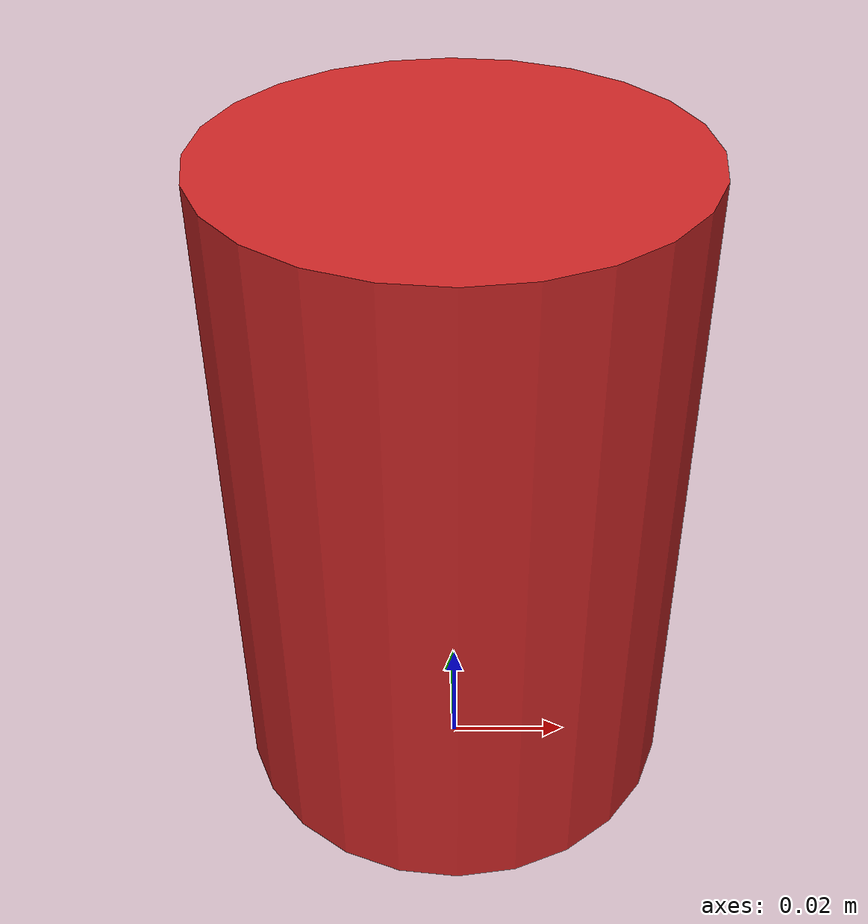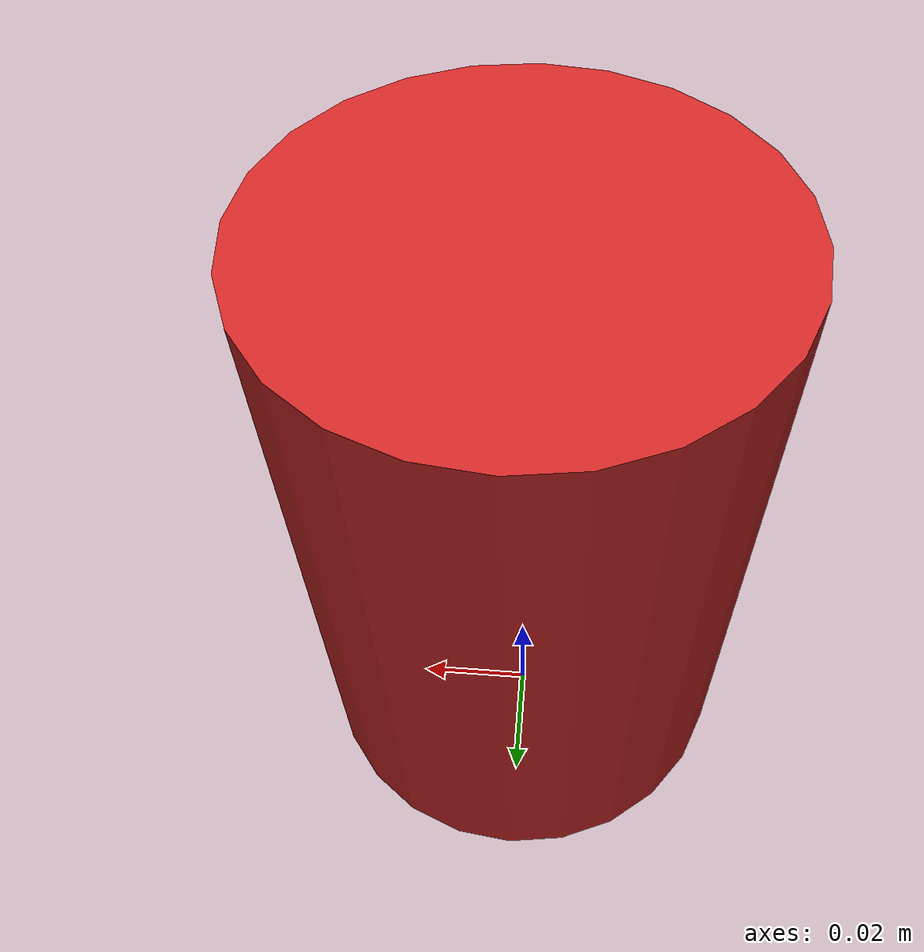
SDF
<?xml version="1.0" ?>
<sdf version="1.5">
  <model name="cyl_can">
    <pose> 0 0 0.06 0 0 0</pose>
    <static>false</static>
    <link name="link">
      <collision name="collision">
        <geometry>
          <cylinder>
            <length>0.108</length>
            <radius>0.0365</radius>
          </cylinder>
        </geometry>
        <surface>
          <friction>
            <ode>
              <mu>100</mu>
              <mu2>50</mu2>
            </ode>
          </friction>
        </surface>
      </collision>
      <visual name="visual">
        <geometry>
          <cylinder>
            <length>0.108</length>
            <radius>0.0365</radius>
          </cylinder>
        </geometry>
        <material>
          <script>
            <uri>file://media/materials/scripts/gazebo.material</uri>
            <name>Gazebo/Red</name>
          </script>
        </material>
      </visual>
    </link>
  </model>
</sdf>
